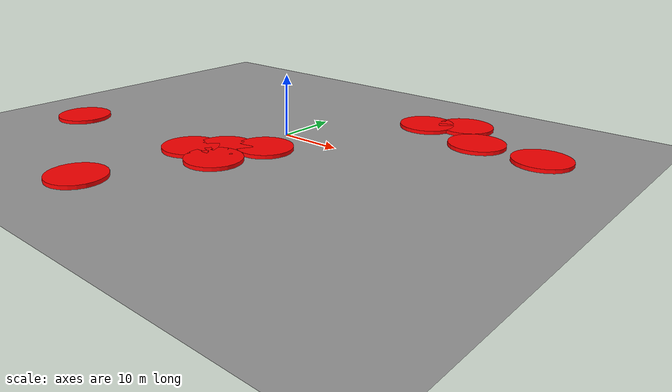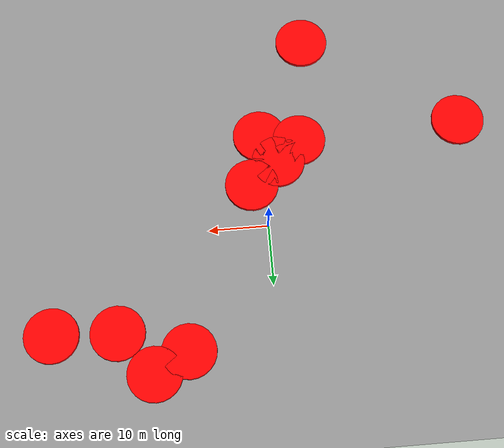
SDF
<sdf version="1.9">
 <world name="default">
  <model name="ground_plane">
   <static>true</static>
   <link name="link">
    <collision name="collision">
     <geometry><plane><normal>0 0 1</normal><size>100 100</size></plane></geometry>
     <surface><contact><collide_without_contact_bitmask>0x01</collide_without_contact_bitmask></contact></surface>
    </collision>
    <visual name="visual">
     <geometry><plane><normal>0 0 1</normal><size>100 100</size></plane></geometry>
     <material><ambient>0.6 0.6 0.6 1</ambient><diffuse>0.6 0.6 0.6 1</diffuse></material>
    </visual>
   </link>
  </model>
  <model name="moving_cylinder_0">
   <pose>-6.452755680776001 -14.963200562354935 0 0 0 0</pose>
   <link name="moving_link">
    <gravity>false</gravity>
    <visual name="visual">
     <geometry><cylinder><radius>4.5</radius><length>1.0</length></cylinder></geometry>
     <material><ambient>1 0 0 1</ambient></material>
    </visual>
   </link>
   <motion>
    <link_name>moving_link</link_name>
    <direction>-0.7071067811865475 0.7071067811865476 0</direction>
    <amplitude>15.0</amplitude>
    <speed>30.0</speed>
    <turnaround_threshold>0.5</turnaround_threshold>
   </motion>
  </model>
  <model name="moving_cylinder_1">
   <pose>-2.574321675909929 -11.325328236262564 0 0 0 0</pose>
   <link name="moving_link">
    <gravity>false</gravity>
    <visual name="visual">
     <geometry><cylinder><radius>4.5</radius><length>1.0</length></cylinder></geometry>
     <material><ambient>1 0 0 1</ambient></material>
    </visual>
   </link>
   <motion>
    <link_name>moving_link</link_name>
    <direction>-0.7071067811865475 0.7071067811865476 0</direction>
    <amplitude>15.0</amplitude>
    <speed>30.0</speed>
    <turnaround_threshold>0.5</turnaround_threshold>
   </motion>
  </model>
  <model name="moving_cylinder_2">
   <pose>19.97323095822354 22.967089496325443 0 0 0 0</pose>
   <link name="moving_link">
    <gravity>false</gravity>
    <visual name="visual">
     <geometry><cylinder><radius>4.5</radius><length>1.0</length></cylinder></geometry>
     <material><ambient>1 0 0 1</ambient></material>
    </visual>
   </link>
   <motion>
    <link_name>moving_link</link_name>
    <direction>0.7071067811865476 -0.7071067811865475 0</direction>
    <amplitude>15.0</amplitude>
    <speed>30.0</speed>
    <turnaround_threshold>0.5</turnaround_threshold>
   </motion>
  </model>
  <model name="moving_cylinder_3">
   <pose>14.34434296383034 19.77461895540547 0 0 0 0</pose>
   <link name="moving_link">
    <gravity>false</gravity>
    <visual name="visual">
     <geometry><cylinder><radius>4.5</radius><length>1.0</length></cylinder></geometry>
     <material><ambient>1 0 0 1</ambient></material>
    </visual>
   </link>
   <motion>
    <link_name>moving_link</link_name>
    <direction>-0.7071067811865475 0.7071067811865476 0</direction>
    <amplitude>15.0</amplitude>
    <speed>30.0</speed>
    <turnaround_threshold>0.5</turnaround_threshold>
   </motion>
  </model>
  <model name="moving_cylinder_4">
   <pose>0.2731237085419611 -16.205442126496436 0 0 0 0</pose>
   <link name="moving_link">
    <gravity>false</gravity>
    <visual name="visual">
     <geometry><cylinder><radius>4.5</radius><length>1.0</length></cylinder></geometry>
     <material><ambient>1 0 0 1</ambient></material>
    </visual>
   </link>
   <motion>
    <link_name>moving_link</link_name>
    <direction>0.7071067811865476 -0.7071067811865475 0</direction>
    <amplitude>15.0</amplitude>
    <speed>30.0</speed>
    <turnaround_threshold>0.5</turnaround_threshold>
   </motion>
  </model>
  <model name="moving_cylinder_5">
   <pose>-34.06098488378894 -16.535571545471093 0 0 0 0</pose>
   <link name="moving_link">
    <gravity>false</gravity>
    <visual name="visual">
     <geometry><cylinder><radius>4.5</radius><length>1.0</length></cylinder></geometry>
     <material><ambient>1 0 0 1</ambient></material>
    </visual>
   </link>
   <motion>
    <link_name>moving_link</link_name>
    <direction>0.7071067811865476 -0.7071067811865475 0</direction>
    <amplitude>15.0</amplitude>
    <speed>30.0</speed>
    <turnaround_threshold>0.5</turnaround_threshold>
   </motion>
  </model>
  <model name="moving_cylinder_6">
   <pose>-8.528898432297797 -33.414398712845276 0 0 0 0</pose>
   <link name="moving_link">
    <gravity>false</gravity>
    <visual name="visual">
     <geometry><cylinder><radius>4.5</radius><length>1.0</length></cylinder></geometry>
     <material><ambient>1 0 0 1</ambient></material>
    </visual>
   </link>
   <motion>
    <link_name>moving_link</link_name>
    <direction>0.7071067811865476 -0.7071067811865475 0</direction>
    <amplitude>15.0</amplitude>
    <speed>30.0</speed>
    <turnaround_threshold>0.5</turnaround_threshold>
   </motion>
  </model>
  <model name="moving_cylinder_7">
   <pose>36.25509315156396 15.56123752526141 0 0 0 0</pose>
   <link name="moving_link">
    <gravity>false</gravity>
    <visual name="visual">
     <geometry><cylinder><radius>4.5</radius><length>1.0</length></cylinder></geometry>
     <material><ambient>1 0 0 1</ambient></material>
    </visual>
   </link>
   <motion>
    <link_name>moving_link</link_name>
    <direction>-0.7071067811865475 0.7071067811865476 0</direction>
    <amplitude>15.0</amplitude>
    <speed>30.0</speed>
    <turnaround_threshold>0.5</turnaround_threshold>
   </motion>
  </model>
  <model name="moving_cylinder_8">
   <pose>2.228145906434741 -7.472031018197891 0 0 0 0</pose>
   <link name="moving_link">
    <gravity>false</gravity>
    <visual name="visual">
     <geometry><cylinder><radius>4.5</radius><length>1.0</length></cylinder></geometry>
     <material><ambient>1 0 0 1</ambient></material>
    </visual>
   </link>
   <motion>
    <link_name>moving_link</link_name>
    <direction>-0.7071067811865475 0.7071067811865476 0</direction>
    <amplitude>15.0</amplitude>
    <speed>30.0</speed>
    <turnaround_threshold>0.5</turnaround_threshold>
   </motion>
  </model>
  <model name="moving_cylinder_9">
   <pose>25.6311066375883 15.987109508725263 0 0 0 0</pose>
   <link name="moving_link">
    <gravity>false</gravity>
    <visual name="visual">
     <geometry><cylinder><radius>4.5</radius><length>1.0</length></cylinder></geometry>
     <material><ambient>1 0 0 1</ambient></material>
    </visual>
   </link>
   <motion>
    <link_name>moving_link</link_name>
    <direction>-0.7071067811865475 0.7071067811865476 0</direction>
    <amplitude>15.0</amplitude>
    <speed>30.0</speed>
    <turnaround_threshold>0.5</turnaround_threshold>
   </motion>
  </model>
 </world>
</sdf>
